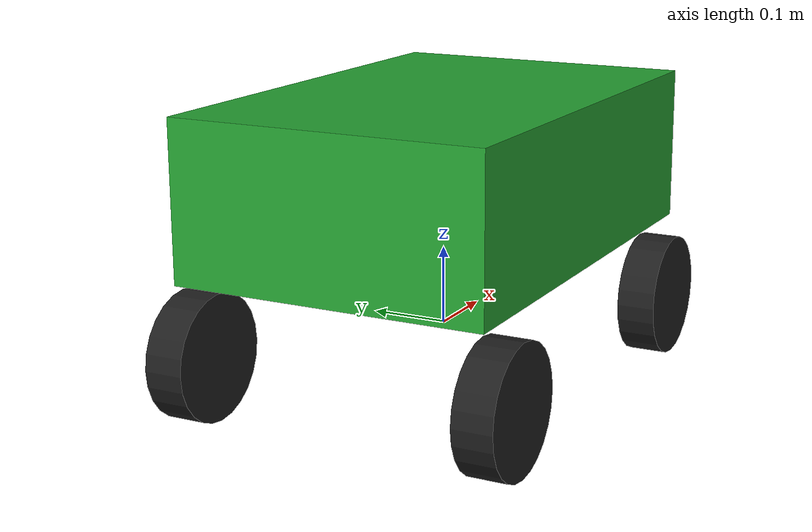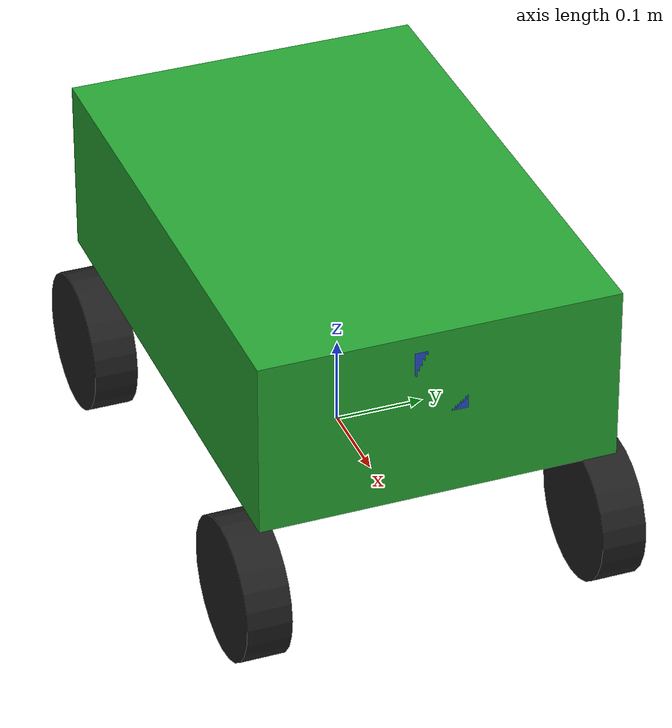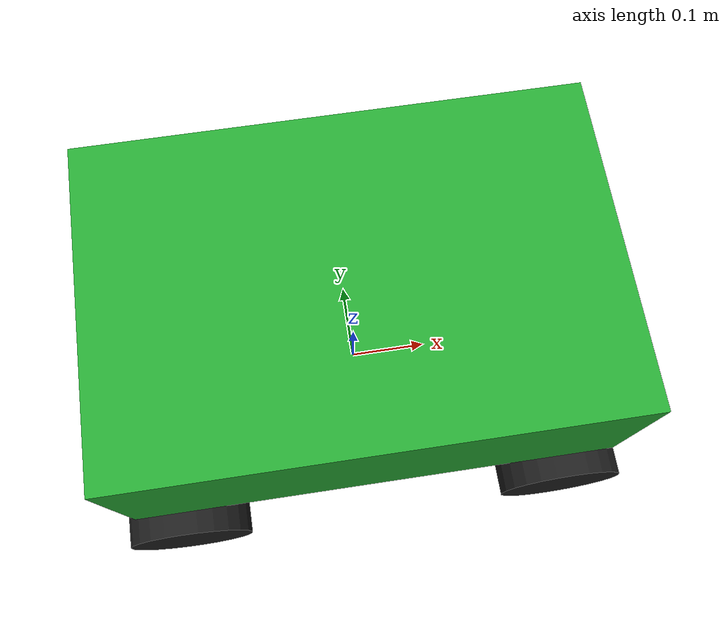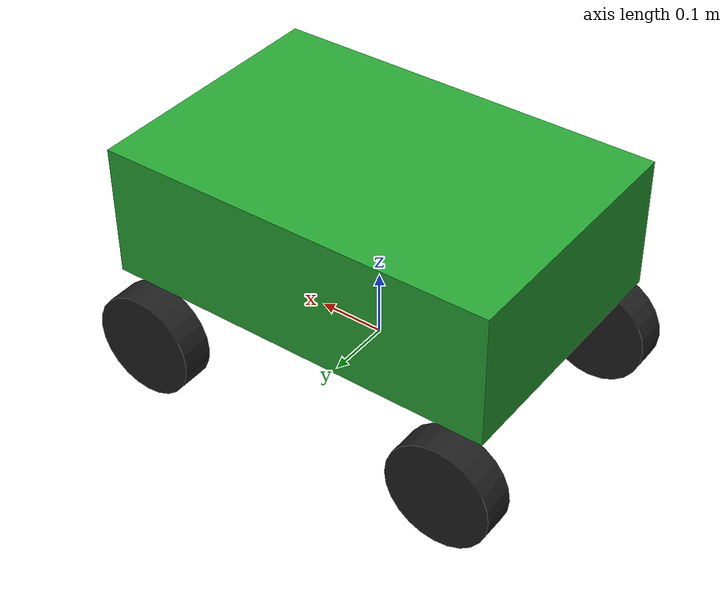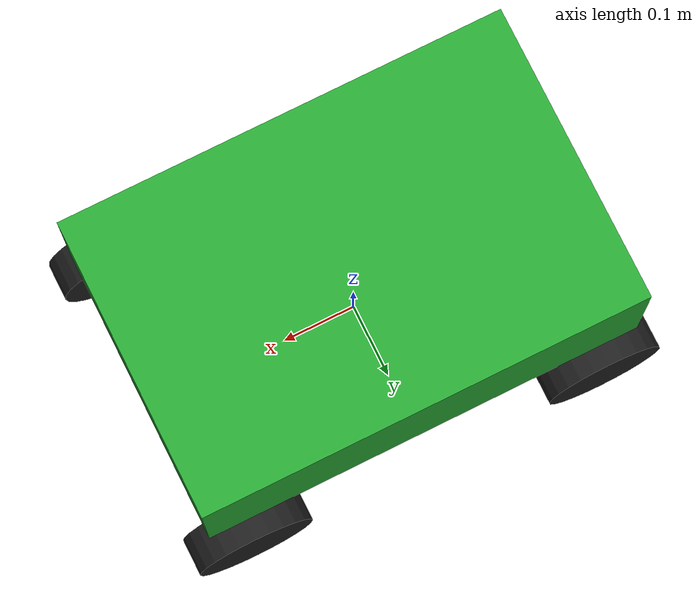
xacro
<?xml version="1.0"?>

<robot  xmlns:xacro ="http://www.ros.org/wiki/xacro" >

<xacro:property name="base_len" value="0.6" />
<xacro:property name="base_width" value="0.4" />
<xacro:property name="base_height" value="0.2" />

<!--wheel-->
<xacro:property name="wheel_r" value="0.08" />
<xacro:property name="wheel_len" value="0.05" />

<!--base link-->

<link name="base_footprint"/>

  <!-- Base -->
  <link name="base_link">
    <visual>
      <geometry>
        <box size="${base_len} ${base_width} ${base_height}"/>
      </geometry>
      <origin xyz="0.0 0.0 ${base_height/2}" rpy="0 0 0"/>  <!-- Fixed height -->
      <material name="green"/>
    </visual>
    <collision>
        <geometry>
            <box size="${base_len} ${base_width} ${base_height}"/>
        </geometry>
      <origin xyz="0.0 0.0 ${base_height/2}" rpy="0 0 0"/>  <!-- Match visual origin -->
   </collision>
   <xacro:box_inertia m="0.5" x="${base_len}" y="${base_width}" z="${base_height}" o_xyz="0 0 ${base_height/2}" o_rpy="0 0 0"/>

  </link>

<joint name="base_joint" type="fixed">
    <origin xyz="0.0 0.0 0.1" rpy="0.0 0.0 0.0"/>
    <parent link="base_footprint"/>
    <child link="base_link"/>
  </joint>

  <!-- ================= Wheels ================= -->

  <xacro:macro name="wheel_link" params ="prefix">
    <link name="wheel_${prefix}">
    <visual>
      <geometry>
        <cylinder radius="${wheel_r}" length="${wheel_len}"/>
      </geometry>
      <origin xyz="0 0 0" rpy="1.5708 0 0"/> <!-- rotate cylinder to stand as wheel -->
      <material name="black"/>

    </visual>

    <collision>
      <geometry>
        <cylinder radius="${wheel_r}" length="${wheel_len}"/>
      </geometry>
      <origin xyz="0 0 0" rpy="1.5708 0 0"/>
    </collision>
    <xacro:cylinder_inertia m="0.5" r="${wheel_r}" h="${wheel_len}" o_xyz="0 0 0" o_rpy="1.5708 0 0"/>
  </link>
  </xacro:macro>

  <xacro:macro name="wheel_joint" params="prefix x_pos y_pos">
    <joint name="joint_wheel_${prefix}" type="continuous">
      <parent link="base_link"/>
      <child link="wheel_${prefix}"/>
      <origin xyz="${x_pos} ${y_pos} -${base_height/2}" rpy="0 0 0"/>
      <axis xyz="0 1 0"/>
    </joint>
  </xacro:macro>

  <!-- Front Left Wheel -->
  <xacro:wheel_link prefix="fl"/>
  <xacro:wheel_joint prefix="fl" x_pos="${(base_len/4)+0.1}" y_pos="${base_width/2}"/>

  <!-- Front Right Wheel -->
  <xacro:wheel_link prefix="fr"/>
  <xacro:wheel_joint prefix="fr" x_pos="${(base_len/4)+0.1}" y_pos="-${base_width/2}"/>

  <!-- Rear Left Wheel -->
  <xacro:wheel_link prefix="rl"/>
  <xacro:wheel_joint prefix="rl" x_pos="-${(base_len/4)+0.1}" y_pos="${base_width/2}"/>

  <!-- Rear Right Wheel -->
  <xacro:wheel_link prefix="rr"/>
  <xacro:wheel_joint prefix="rr" x_pos="-${(base_len/4)+0.1}" y_pos="-${base_width/2}"/>

  <!--Camera-->
  <link name="cam">
    <visual>
        <geometry>
            <box size="0.04 0.06 0.08"/>
        </geometry>
        <origin xyz="0.0 0.0 0.0" rpy="0.0 0.0 0.0"/>
    </visual>
    <collision>
        <geometry>
            <box size="0.04 0.06 0.08"/>
        </geometry>
        <origin xyz="0.0 0.0 0.0" rpy="0.0 0.0 0.0"/>
    </collision>
    <xacro:box_inertia m="0.1" x="0.04" y="0.06" z="0.08" o_xyz="0 0 0" o_rpy="0 0 0"/>
  </link>

  <joint name="joint_cam" type="fixed">
    <parent link="base_link"/>
    <child link="cam"/>
    <origin xyz="${base_len/2 - 0.02} 0.0 ${base_height/2 + 0.04}" rpy="0.0 0.0 0.0"/>
  </joint>

  <!-- Material definitions are in material.xacro -->

  <!-- Add Gazebo material colors -->
  <gazebo reference="base_link">
        <material>Gazebo/Green</material>
    </gazebo>

    <gazebo reference="wheel_fl">
        <material>Gazebo/Black</material>
    </gazebo>
    <gazebo reference="wheel_fr">
        <material>Gazebo/Black</material>
    </gazebo>
    <gazebo reference="wheel_rl">
        <material>Gazebo/Black</material>
    </gazebo>
    <gazebo reference="wheel_rr">
        <material>Gazebo/Black</material>
    </gazebo>

    <gazebo reference="cam">
        <material>Gazebo/Blue</material>
    </gazebo>
</robot>
